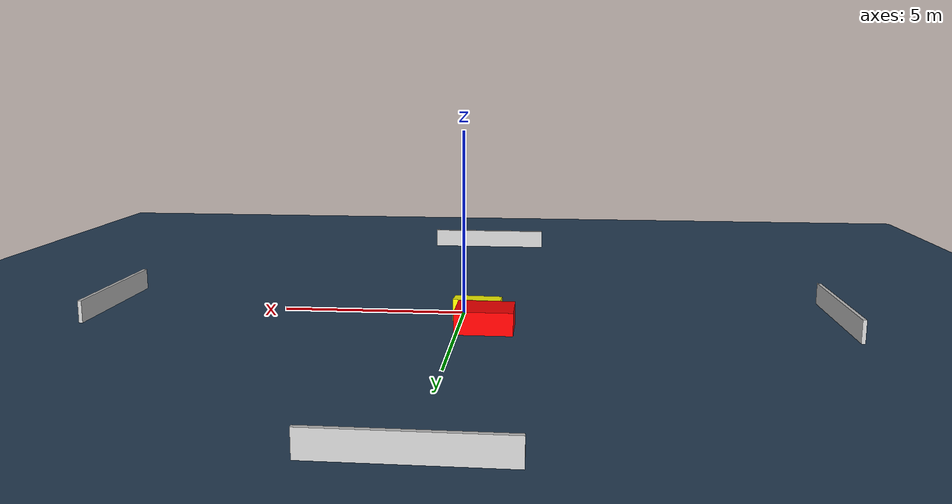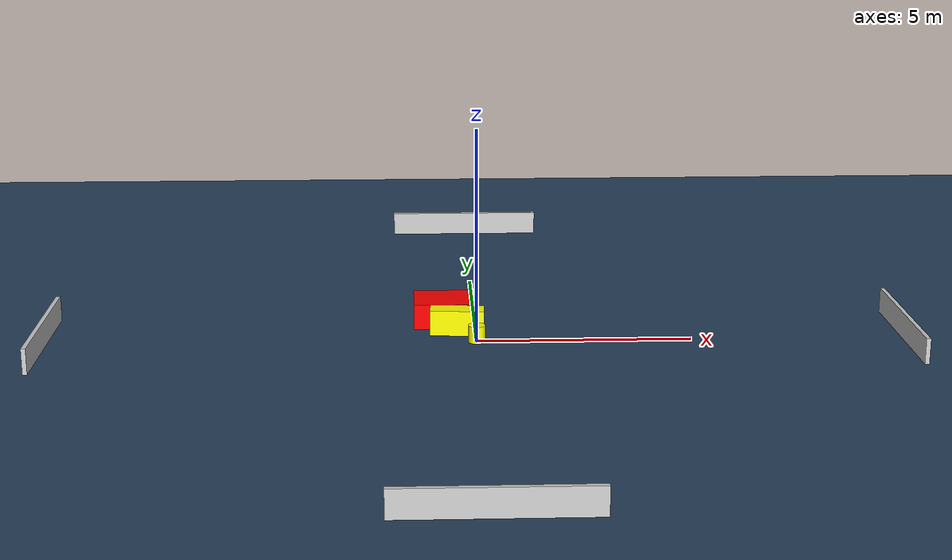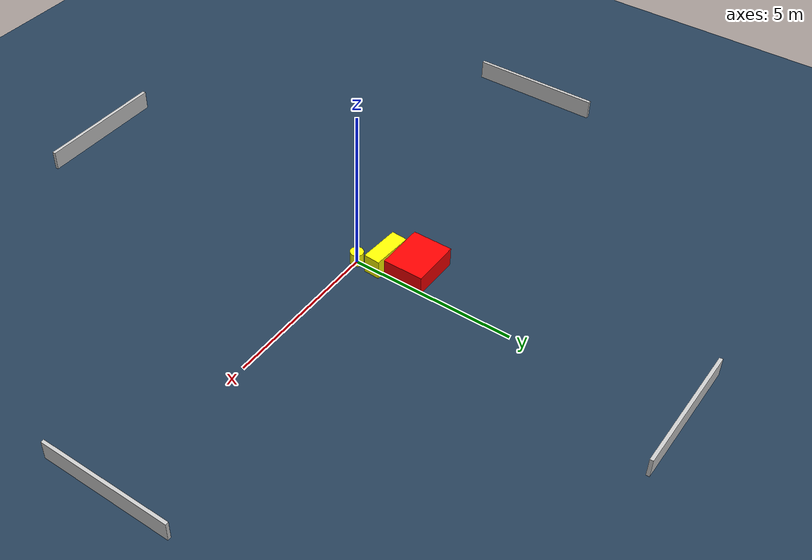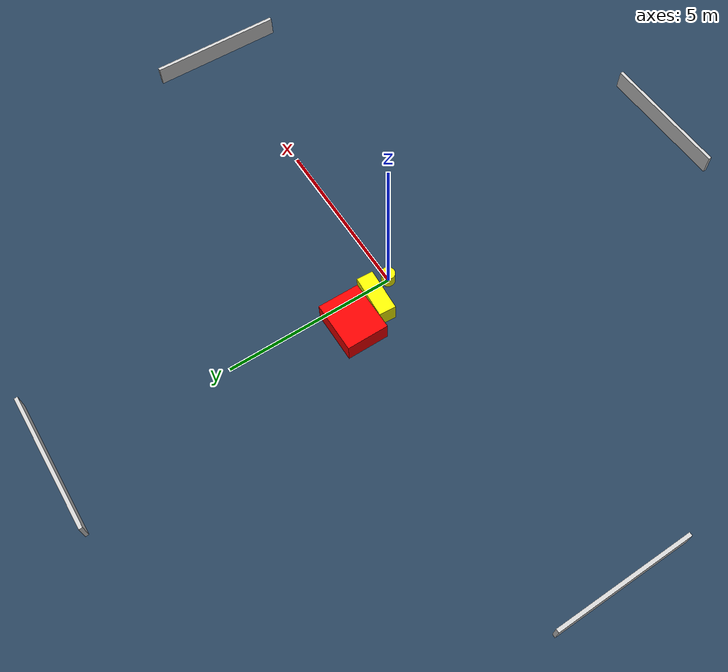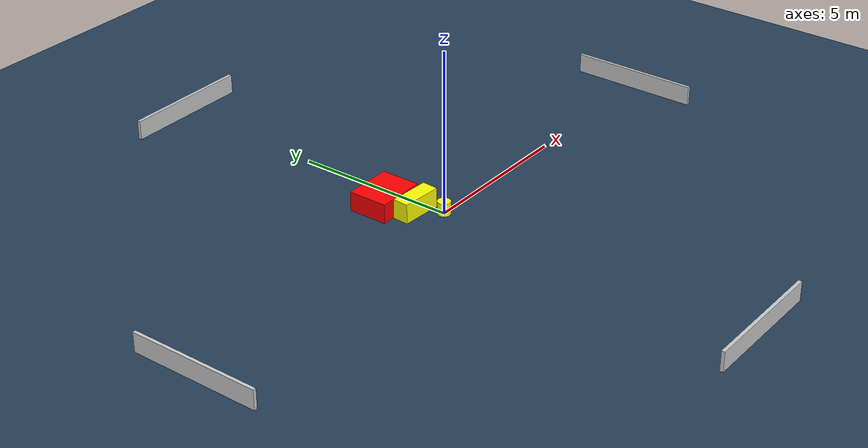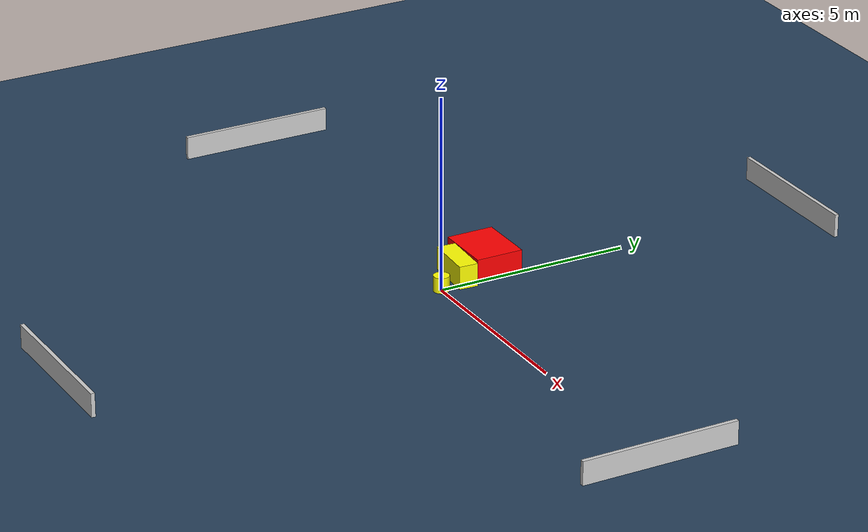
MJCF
<?xml version="1.0" ?>
<mujoco model="generated_environment">
  <option timestep="0.01" integrator="RK4" cone="elliptic"/>
  <default>
    <geom density="1"/>
  </default>
  <asset>
    <texture builtin="gradient" height="3072" name="skybox" rgb1="0.3 0.5 0.7" rgb2="0 0 0" type="skybox" width="512"/>
    <texture builtin="checker" height="300" name="groundplane" rgb1="0.2 0.3 0.4" rgb2="0.1 0.2 0.3" type="2d" width="300"/>
    <material name="groundplane" reflectance="0.2" texrepeat="5 5" texture="groundplane"/>
  </asset>
  <worldbody>
    <light dir="0 0 -1" directional="true" pos="0 0 1.5"/>
    <geom condim="3" friction="0.5 0.005 0.001" material="groundplane" name="floor" pos="0 0 0" size="0 0 0.05" type="plane"/>
    <body name="walls">
      <geom name="wall_1" condim="4" pos="-10.0 0.0 0.3" rgba="0.800000011920929 0.800000011920929 0.800000011920929 1.0" size="0.05 2.0 0.3" type="box"/>
      <geom name="wall_2" condim="4" pos="10.0 0.0 0.3" rgba="0.800000011920929 0.800000011920929 0.800000011920929 1.0" size="0.05 2.0 0.3" type="box"/>
      <geom name="wall_3" condim="4" pos="0.0 -10.0 0.3" rgba="0.800000011920929 0.800000011920929 0.800000011920929 1.0" size="2.0 0.05 0.3" type="box"/>
      <geom name="wall_4" condim="4" pos="0.0 10.0 0.3" rgba="0.800000011920929 0.800000011920929 0.800000011920929 1.0" size="2.0 0.05 0.3" type="box"/>
    </body>
    <body name="robot">
      <joint name="joint_x" type="slide" pos="0 0 0" axis="1 0 0"/>
      <joint name="joint_y" type="slide" pos="0 0 0" axis="0 1 0"/>
      <geom name="robot" type="cylinder" pos="0.0 0.0 0.2" size="0.2 0.2 0.0" mass="5.0" friction="1.0 0.005 0.0001" condim="4" rgba="1.0 1.0 0.0 1.0"/>
    </body>
    <body name="obstacle_1_movable">
      <geom name="obstacle_1_movable" condim="4" pos="-0.43808849714355974 0.6766575173396169 0.3" euler="0 0 86.597080613612" friction="0.0 0.005 0.001" rgba="1.0 1.0 0.0 1.0" size="0.2454240647676203 0.6338458533591727 0.3" type="box" mass="0.1"/>
      <joint type="free"/>
    </body>
    <body name="obstacle_2_static">
      <geom name="obstacle_2_static" condim="4" pos="-0.703625974802704 1.5789810718642012 0.3" euler="0 0 269.98512934110147" friction="0.0 0.005 0.001" rgba="1.0 0.0 0.0 1.0" size="0.6113473235566893 0.750194988157622 0.3" type="box"/>
    </body>
  </worldbody>
  <actuator>
    <motor name="actuator_x" joint="joint_x" gear="1" ctrlrange="-1 1"/>
    <motor name="actuator_y" joint="joint_y" gear="1" ctrlrange="-1 1"/>
  </actuator>
</mujoco>
